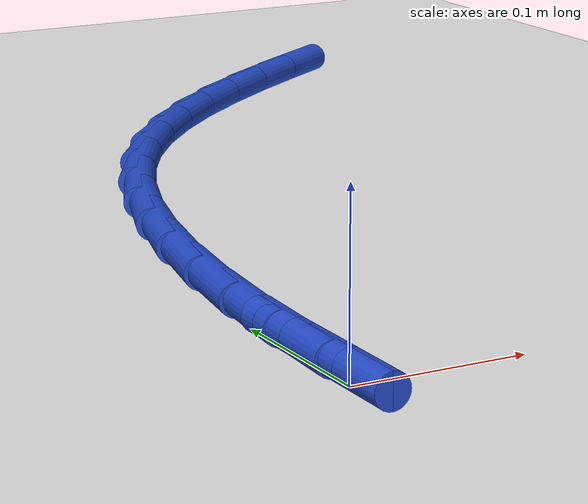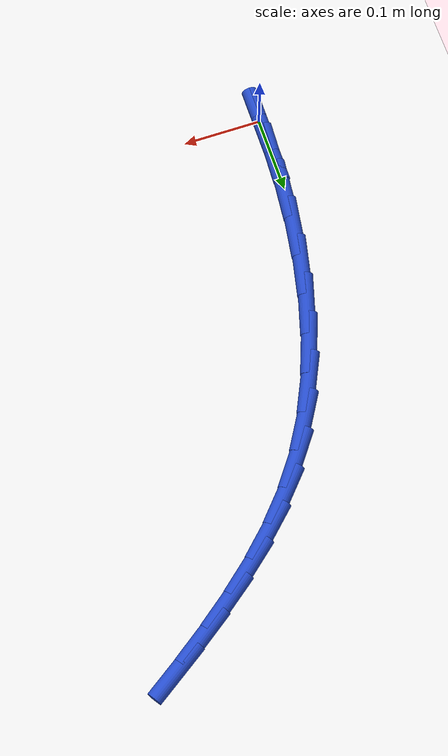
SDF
<sdf version="1.6">
 <world name="default">
  <model name="ground_plane">
   <static>1</static>
   <link name="link">
    <collision name="collision">
     <geometry><plane><normal>0 0 1</normal><size>100 100</size></plane></geometry>
     <surface><friction><ode><mu>100</mu><mu2>50</mu2></ode></friction></surface>
    </collision>
    <visual name="visual">
     <cast_shadows>0</cast_shadows>
     <geometry><plane><normal>0 0 1</normal><size>100 100</size></plane></geometry>
     <material>
      <script><uri>file://media/materials/scripts/gazebo.material</uri><name>Gazebo/WhiteGlow</name></script>
     </material>
    </visual>
   </link>
  </model>
  <model name="line">
   <link name="link_0">
    <pose>-1.214306433183765e-17 4.163336342344337e-17 0.01 0 1.57 1.5653247132548307</pose>
    <collision name="collision">
     <geometry><cylinder><radius>0.01</radius><length>0.08</length></cylinder></geometry>
    </collision>
    <visual name="visual">
     <material>
      <script><name>Gazebo/Blue</name><uri>file://media/materials/scripts/gazebo.material</uri></script>
     </material>
     <geometry><cylinder><radius>0.01</radius><length>0.08</length></cylinder></geometry>
    </visual>
   </link>
   <link name="link_1">
    <pose>0.0002891131561396566 0.05283821103352478 0.01 0 1.57 1.5201435535171275</pose>
    <collision name="collision">
     <geometry><cylinder><radius>0.01</radius><length>0.08</length></cylinder></geometry>
    </collision>
    <visual name="visual">
     <material>
      <script><name>Gazebo/Blue</name><uri>file://media/materials/scripts/gazebo.material</uri></script>
     </material>
     <geometry><cylinder><radius>0.01</radius><length>0.08</length></cylinder></geometry>
    </visual>
   </link>
   <link name="link_2">
    <pose>0.0029742547965490684 0.10580361940493893 0.01 0 1.57 1.4710764609372857</pose>
    <collision name="collision">
     <geometry><cylinder><radius>0.01</radius><length>0.08</length></cylinder></geometry>
    </collision>
    <visual name="visual">
     <material>
      <script><name>Gazebo/Blue</name><uri>file://media/materials/scripts/gazebo.material</uri></script>
     </material>
     <geometry><cylinder><radius>0.01</radius><length>0.08</length></cylinder></geometry>
    </visual>
   </link>
   <link name="link_3">
    <pose>0.008241024808958351 0.15844409084244765 0.01 0 1.57 1.4171109490008953</pose>
    <collision name="collision">
     <geometry><cylinder><radius>0.01</radius><length>0.08</length></cylinder></geometry>
    </collision>
    <visual name="visual">
     <material>
      <script><name>Gazebo/Blue</name><uri>file://media/materials/scripts/gazebo.material</uri></script>
     </material>
     <geometry><cylinder><radius>0.01</radius><length>0.08</length></cylinder></geometry>
    </visual>
   </link>
   <link name="link_4">
    <pose>0.01627502308109761 0.21030749107425578 0.01 0 1.57 1.3571242927483247</pose>
    <collision name="collision">
     <geometry><cylinder><radius>0.01</radius><length>0.08</length></cylinder></geometry>
    </collision>
    <visual name="visual">
     <material>
      <script><name>Gazebo/Blue</name><uri>file://media/materials/scripts/gazebo.material</uri></script>
     </material>
     <geometry><cylinder><radius>0.01</radius><length>0.08</length></cylinder></geometry>
    </visual>
   </link>
   <link name="link_5">
    <pose>0.02726184950069699 0.2609416858285687 0.01 0 1.57 1.2898786702113598</pose>
    <collision name="collision">
     <geometry><cylinder><radius>0.01</radius><length>0.08</length></cylinder></geometry>
    </collision>
    <visual name="visual">
     <material>
      <script><name>Gazebo/Blue</name><uri>file://media/materials/scripts/gazebo.material</uri></script>
     </material>
     <geometry><cylinder><radius>0.01</radius><length>0.08</length></cylinder></geometry>
    </visual>
   </link>
   <link name="link_6">
    <pose>0.0413871039554866 0.30989454083359136 0.01 0 1.57 1.2140492613324576</pose>
    <collision name="collision">
     <geometry><cylinder><radius>0.01</radius><length>0.08</length></cylinder></geometry>
    </collision>
    <visual name="visual">
     <material>
      <script><name>Gazebo/Blue</name><uri>file://media/materials/scripts/gazebo.material</uri></script>
     </material>
     <geometry><cylinder><radius>0.01</radius><length>0.08</length></cylinder></geometry>
    </visual>
   </link>
   <link name="link_7">
    <pose>0.05883638633319655 0.3567139218175287 0.01 0 1.57 1.128310022862588</pose>
    <collision name="collision">
     <geometry><cylinder><radius>0.01</radius><length>0.08</length></cylinder></geometry>
    </collision>
    <visual name="visual">
     <material>
      <script><name>Gazebo/Blue</name><uri>file://media/materials/scripts/gazebo.material</uri></script>
     </material>
     <geometry><cylinder><radius>0.01</radius><length>0.08</length></cylinder></geometry>
    </visual>
   </link>
   <link name="link_8">
    <pose>0.07979529652155697 0.4009476945085859 0.01 0 1.57 1.031540856147317</pose>
    <collision name="collision">
     <geometry><cylinder><radius>0.01</radius><length>0.08</length></cylinder></geometry>
    </collision>
    <visual name="visual">
     <material>
      <script><name>Gazebo/Blue</name><uri>file://media/materials/scripts/gazebo.material</uri></script>
     </material>
     <geometry><cylinder><radius>0.01</radius><length>0.08</length></cylinder></geometry>
    </visual>
   </link>
   <link name="link_9">
    <pose>0.10444855251121105 0.44214507661594993 0.01 0 1.57 0.9292899022352308</pose>
    <collision name="collision">
     <geometry><cylinder><radius>0.01</radius><length>0.08</length></cylinder></geometry>
    </collision>
    <visual name="visual">
     <material>
      <script><name>Gazebo/Blue</name><uri>file://media/materials/scripts/gazebo.material</uri></script>
     </material>
     <geometry><cylinder><radius>0.01</radius><length>0.08</length></cylinder></geometry>
    </visual>
   </link>
   <link name="link_10">
    <pose>0.13280976859073773 0.48011759417763555 0.01 0 1.57 0.8365846128096797</pose>
    <collision name="collision">
     <geometry><cylinder><radius>0.01</radius><length>0.08</length></cylinder></geometry>
    </collision>
    <visual name="visual">
     <material>
      <script><name>Gazebo/Blue</name><uri>file://media/materials/scripts/gazebo.material</uri></script>
     </material>
     <geometry><cylinder><radius>0.01</radius><length>0.08</length></cylinder></geometry>
    </visual>
   </link>
   <link name="link_11">
    <pose>0.16451831288126137 0.5152505065031848 0.01 0 1.57 0.7573447239296612</pose>
    <collision name="collision">
     <geometry><cylinder><radius>0.01</radius><length>0.08</length></cylinder></geometry>
    </collision>
    <visual name="visual">
     <material>
      <script><name>Gazebo/Blue</name><uri>file://media/materials/scripts/gazebo.material</uri></script>
     </material>
     <geometry><cylinder><radius>0.01</radius><length>0.08</length></cylinder></geometry>
    </visual>
   </link>
   <link name="link_12">
    <pose>0.19916405919699562 0.5480049495124961 0.01 0 1.57 0.6925076252023527</pose>
    <collision name="collision">
     <geometry><cylinder><radius>0.01</radius><length>0.08</length></cylinder></geometry>
    </collision>
    <visual name="visual">
     <material>
      <script><name>Gazebo/Blue</name><uri>file://media/materials/scripts/gazebo.material</uri></script>
     </material>
     <geometry><cylinder><radius>0.01</radius><length>0.08</length></cylinder></geometry>
    </visual>
   </link>
   <link name="link_13">
    <pose>0.23633688135215453 0.5788420591254685 0.01 0 1.57 0.6420919604782326</pose>
    <collision name="collision">
     <geometry><cylinder><radius>0.01</radius><length>0.08</length></cylinder></geometry>
    </collision>
    <visual name="visual">
     <material>
      <script><name>Gazebo/Blue</name><uri>file://media/materials/scripts/gazebo.material</uri></script>
     </material>
     <geometry><cylinder><radius>0.01</radius><length>0.08</length></cylinder></geometry>
    </visual>
   </link>
   <link name="link_14">
    <pose>0.2756266531609518 0.6082229712620002 0.01 0 1.57 0.6056038954265704</pose>
    <collision name="collision">
     <geometry><cylinder><radius>0.01</radius><length>0.08</length></cylinder></geometry>
    </collision>
    <visual name="visual">
     <material>
      <script><name>Gazebo/Blue</name><uri>file://media/materials/scripts/gazebo.material</uri></script>
     </material>
     <geometry><cylinder><radius>0.01</radius><length>0.08</length></cylinder></geometry>
    </visual>
   </link>
   <link name="link_15">
    <pose>0.3166232484376014 0.6366088218419901 0.01 0 1.57 0.5823569781162897</pose>
    <collision name="collision">
     <geometry><cylinder><radius>0.01</radius><length>0.08</length></cylinder></geometry>
    </collision>
    <visual name="visual">
     <material>
      <script><name>Gazebo/Blue</name><uri>file://media/materials/scripts/gazebo.material</uri></script>
     </material>
     <geometry><cylinder><radius>0.01</radius><length>0.08</length></cylinder></geometry>
    </visual>
   </link>
   <link name="link_140">
    <pose>-2.42861286636753e-17 1.249000902703301e-16 0.01 0 1.57 1.5660867501119904</pose>
    <collision name="collision">
     <geometry><cylinder><radius>0.01</radius><length>0.08</length></cylinder></geometry>
    </collision>
    <visual name="visual">
     <material>
      <script><name>Gazebo/Blue</name><uri>file://media/materials/scripts/gazebo.material</uri></script>
     </material>
     <geometry><cylinder><radius>0.01</radius><length>0.08</length></cylinder></geometry>
    </visual>
   </link>
   <link name="link_141">
    <pose>0.00024915774523079533 0.05290409730811263 0.01 0 1.57 1.5660867501119906</pose>
    <collision name="collision">
     <geometry><cylinder><radius>0.01</radius><length>0.08</length></cylinder></geometry>
    </collision>
    <visual name="visual">
     <material>
      <script><name>Gazebo/Blue</name><uri>file://media/materials/scripts/gazebo.material</uri></script>
     </material>
     <geometry><cylinder><radius>0.01</radius><length>0.08</length></cylinder></geometry>
    </visual>
   </link>
  </model>
 </world>
</sdf>
